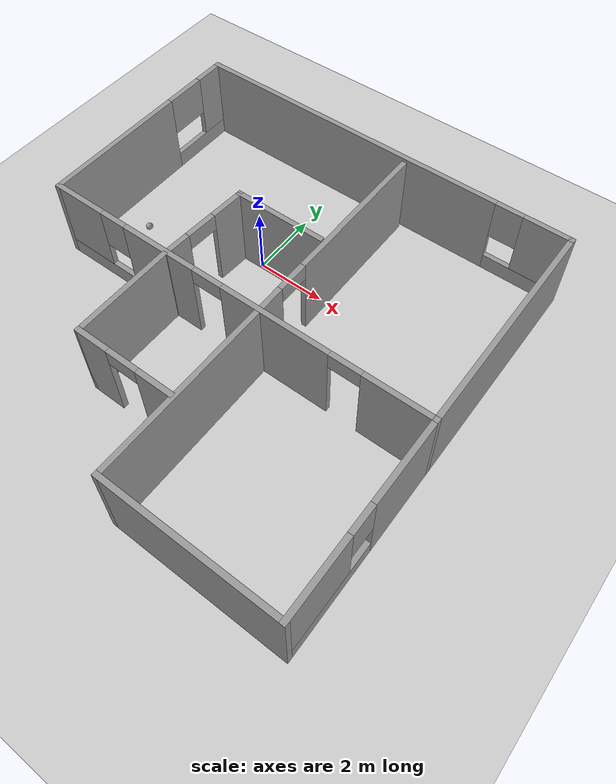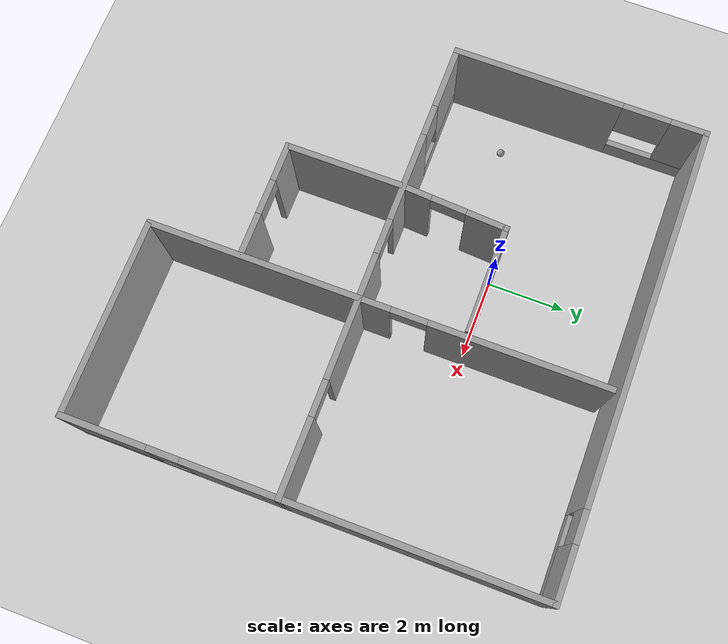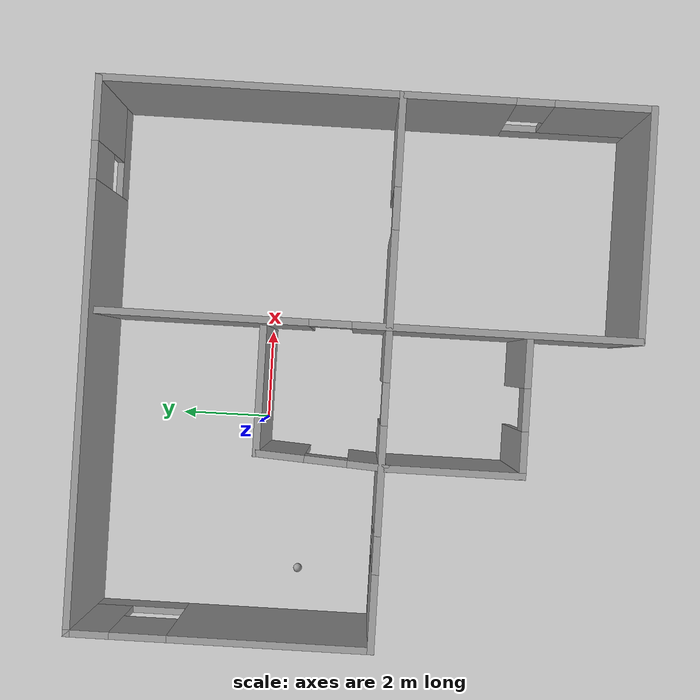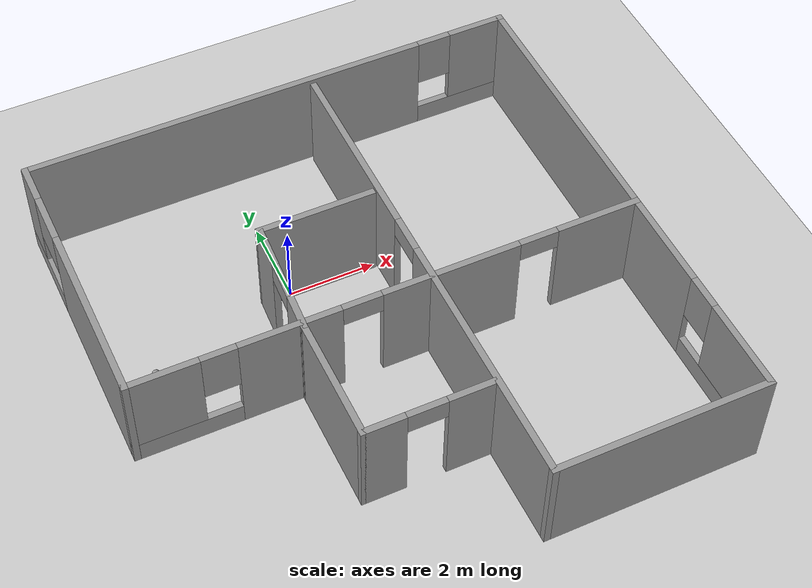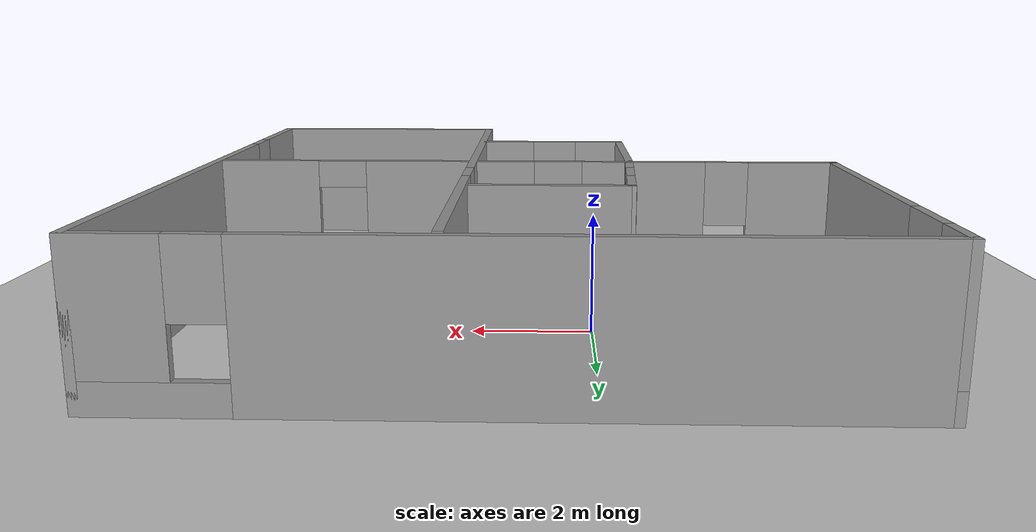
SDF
<sdf version="1.6">
 <world name="default">
  <light name="sun" type="directional">
   <pose>0 0 10 0 -0 0</pose>
   <diffuse>0.8 0.8 0.8 1</diffuse>
   <specular>0.2 0.2 0.2 1</specular>
   <attenuation>
    <range>1000</range>
    <constant>0.9</constant>
    <linear>0.01</linear>
    <quadratic>0.001</quadratic>
   </attenuation>
   <direction>-0.5 0.1 -0.9</direction>
  </light>
  <model name="ground_plane">
   <static>1</static>
   <link name="link">
    <collision name="collision">
     <geometry><plane><normal>0 0 1</normal><size>100 100</size></plane></geometry>
     <surface><friction><ode><mu>100</mu><mu2>50</mu2></ode></friction></surface>
    </collision>
    <visual name="visual">
     <cast_shadows>0</cast_shadows>
     <geometry><plane><normal>0 0 1</normal><size>100 100</size></plane></geometry>
     <material>
      <script><uri>file://media/materials/scripts/gazebo.material</uri><name>Gazebo/Grey</name></script>
     </material>
    </visual>
   </link>
  </model>
  <gravity>0 0 -9.8</gravity>
  <magnetic_field>6e-06 2.3e-05 -4.2e-05</magnetic_field>
  <atmosphere type="adiabatic"/>
  <physics name="default_physics" default="0" type="ode">
   <max_step_size>0.001</max_step_size>
   <real_time_factor>1</real_time_factor>
   <real_time_update_rate>1000</real_time_update_rate>
  </physics>
  <scene><ambient>0.4 0.4 0.4 1</ambient><background>0.7 0.7 0.7 1</background><shadows>1</shadows></scene>
  <audio><device>default</device></audio>
  <spherical_coordinates>
   <surface_model>EARTH_WGS84</surface_model>
   <latitude_deg>0</latitude_deg>
   <longitude_deg>0</longitude_deg>
   <elevation>0</elevation>
   <heading_deg>0</heading_deg>
  </spherical_coordinates>
  <model name="floor_plan">
   <pose>1.21294 -2.08877 0 0 -0 0</pose>
   <link name="Wall_0">
    <pose>-0 -0.55 0 0 -0 3.14159</pose>
    <visual name="Wall_0_Visual_0">
     <pose>-4.87792 0 1.25 0 -0 0</pose>
     <geometry><box><size>1.99416 0.15 2.5</size></box></geometry>
     <material>
      <script><uri>file://media/materials/scripts/gazebo.material</uri><name>Gazebo/Grey</name></script>
      <ambient>1 1 1 1</ambient>
     </material>
     <meta><layer>0</layer></meta>
    </visual>
    <collision name="Wall_0_Collision_0">
     <geometry><box><size>1.99416 0.15 2.5</size></box></geometry>
     <pose>-4.87792 0 1.25 0 -0 0</pose>
    </collision>
    <visual name="Wall_0_Visual_1">
     <pose>-1.3881 0 1.25 0 -0 0</pose>
     <geometry><box><size>3.18548 0.15 2.5</size></box></geometry>
     <material>
      <script><uri>file://media/materials/scripts/gazebo.material</uri><name>Gazebo/Grey</name></script>
      <ambient>1 1 1 1</ambient>
     </material>
     <meta><layer>0</layer></meta>
    </visual>
    <collision name="Wall_0_Collision_1">
     <geometry><box><size>3.18548 0.15 2.5</size></box></geometry>
     <pose>-1.3881 0 1.25 0 -0 0</pose>
    </collision>
    <visual name="Wall_0_Visual_2">
     <pose>2.25796 0 1.25 0 -0 0</pose>
     <geometry><box><size>2.30665 0.15 2.5</size></box></geometry>
     <material>
      <script><uri>file://media/materials/scripts/gazebo.material</uri><name>Gazebo/Grey</name></script>
      <ambient>1 1 1 1</ambient>
     </material>
     <meta><layer>0</layer></meta>
    </visual>
    <collision name="Wall_0_Collision_2">
     <geometry><box><size>2.30665 0.15 2.5</size></box></geometry>
     <pose>2.25796 0 1.25 0 -0 0</pose>
    </collision>
    <visual name="Wall_0_Visual_3">
     <pose>4.64314 0 0.25 0 -0 0</pose>
     <geometry><box><size>2.46372 0.15 0.5</size></box></geometry>
     <material>
      <script><uri>file://media/materials/scripts/gazebo.material</uri><name>Gazebo/Grey</name></script>
      <ambient>1 1 1 1</ambient>
     </material>
     <meta><layer>0</layer></meta>
    </visual>
    <collision name="Wall_0_Collision_3">
     <geometry><box><size>2.46372 0.15 0.5</size></box></geometry>
     <pose>4.64314 0 0.25 0 -0 0</pose>
    </collision>
    <visual name="Wall_0_Visual_4">
     <pose>5.04314 0 1.5 0 -0 0</pose>
     <geometry><box><size>1.66372 0.15 2</size></box></geometry>
     <material>
      <script><uri>file://media/materials/scripts/gazebo.material</uri><name>Gazebo/Grey</name></script>
      <ambient>1 1 1 1</ambient>
     </material>
     <meta><layer>0</layer></meta>
    </visual>
    <collision name="Wall_0_Collision_4">
     <geometry><box><size>1.66372 0.15 2</size></box></geometry>
     <pose>5.04314 0 1.5 0 -0 0</pose>
    </collision>
    <visual name="Wall_0_Visual_5">
     <pose>3.81128 0 1.9 0 -0 0</pose>
     <geometry><box><size>0.8 0.15 1.2</size></box></geometry>
     <material>
      <script><uri>file://media/materials/scripts/gazebo.material</uri><name>Gazebo/Grey</name></script>
      <ambient>1 1 1 1</ambient>
     </material>
     <meta><layer>0</layer></meta>
    </visual>
    <collision name="Wall_0_Collision_5">
     <geometry><box><size>0.8 0.15 1.2</size></box></geometry>
     <pose>3.81128 0 1.9 0 -0 0</pose>
    </collision>
    <visual name="Wall_0_Visual_6">
     <pose>-3.43084 0 2.25 0 -0 0</pose>
     <geometry><box><size>0.9 0.15 0.5</size></box></geometry>
     <material>
      <script><uri>file://media/materials/scripts/gazebo.material</uri><name>Gazebo/Grey</name></script>
      <ambient>1 1 1 1</ambient>
     </material>
     <meta><layer>0</layer></meta>
    </visual>
    <collision name="Wall_0_Collision_6">
     <geometry><box><size>0.9 0.15 0.5</size></box></geometry>
     <pose>-3.43084 0 2.25 0 -0 0</pose>
    </collision>
    <visual name="Wall_0_Visual_7">
     <pose>0.654638 0 2.25 0 -0 0</pose>
     <geometry><box><size>0.9 0.15 0.5</size></box></geometry>
     <material>
      <script><uri>file://media/materials/scripts/gazebo.material</uri><name>Gazebo/Grey</name></script>
      <ambient>1 1 1 1</ambient>
     </material>
     <meta><layer>0</layer></meta>
    </visual>
    <collision name="Wall_0_Collision_7">
     <geometry><box><size>0.9 0.15 0.5</size></box></geometry>
     <pose>0.654638 0 2.25 0 -0 0</pose>
    </collision>
   </link>
   <link name="Wall_1">
    <pose>-5.8 2.625 0 0 -0 1.5708</pose>
    <visual name="Wall_1_Visual_0">
     <pose>-1.08259 0 1.25 0 -0 0</pose>
     <geometry><box><size>4.33481 0.15 2.5</size></box></geometry>
     <material>
      <script><uri>file://media/materials/scripts/gazebo.material</uri><name>Gazebo/Grey</name></script>
      <ambient>1 1 1 1</ambient>
     </material>
     <meta><layer>0</layer></meta>
    </visual>
    <collision name="Wall_1_Collision_0">
     <geometry><box><size>4.33481 0.15 2.5</size></box></geometry>
     <pose>-1.08259 0 1.25 0 -0 0</pose>
    </collision>
    <visual name="Wall_1_Visual_1">
     <pose>2.16741 0 0.25 0 -0 0</pose>
     <geometry><box><size>2.16519 0.15 0.5</size></box></geometry>
     <material>
      <script><uri>file://media/materials/scripts/gazebo.material</uri><name>Gazebo/Grey</name></script>
      <ambient>1 1 1 1</ambient>
     </material>
     <meta><layer>0</layer></meta>
    </visual>
    <collision name="Wall_1_Collision_1">
     <geometry><box><size>2.16519 0.15 0.5</size></box></geometry>
     <pose>2.16741 0 0.25 0 -0 0</pose>
    </collision>
    <visual name="Wall_1_Visual_2">
     <pose>2.76741 0 1.5 0 -0 0</pose>
     <geometry><box><size>0.965186 0.15 2</size></box></geometry>
     <material>
      <script><uri>file://media/materials/scripts/gazebo.material</uri><name>Gazebo/Grey</name></script>
      <ambient>1 1 1 1</ambient>
     </material>
     <meta><layer>0</layer></meta>
    </visual>
    <collision name="Wall_1_Collision_2">
     <geometry><box><size>0.965186 0.15 2</size></box></geometry>
     <pose>2.76741 0 1.5 0 -0 0</pose>
    </collision>
    <visual name="Wall_1_Visual_3">
     <pose>1.68481 0 1.9 0 -0 0</pose>
     <geometry><box><size>1.2 0.15 1.2</size></box></geometry>
     <material>
      <script><uri>file://media/materials/scripts/gazebo.material</uri><name>Gazebo/Grey</name></script>
      <ambient>1 1 1 1</ambient>
     </material>
     <meta><layer>0</layer></meta>
    </visual>
    <collision name="Wall_1_Collision_3">
     <geometry><box><size>1.2 0.15 1.2</size></box></geometry>
     <pose>1.68481 0 1.9 0 -0 0</pose>
    </collision>
   </link>
   <link name="Wall_10">
    <pose>-0.5672 -3.4906 0 0 -0 0</pose>
    <visual name="Wall_10_Visual_0">
     <pose>-0.994935 0 1.25 0 -0 0</pose>
     <geometry><box><size>1.01013 0.15 2.5</size></box></geometry>
     <material>
      <script><uri>file://media/materials/scripts/gazebo.material</uri><name>Gazebo/Grey</name></script>
      <ambient>1 1 1 1</ambient>
     </material>
     <meta><layer>0</layer></meta>
    </visual>
    <collision name="Wall_10_Collision_0">
     <geometry><box><size>1.01013 0.15 2.5</size></box></geometry>
     <pose>-0.994935 0 1.25 0 -0 0</pose>
    </collision>
    <visual name="Wall_10_Visual_1">
     <pose>0.955065 0 1.25 0 -0 0</pose>
     <geometry><box><size>1.08987 0.15 2.5</size></box></geometry>
     <material>
      <script><uri>file://media/materials/scripts/gazebo.material</uri><name>Gazebo/Grey</name></script>
      <ambient>1 1 1 1</ambient>
     </material>
     <meta><layer>0</layer></meta>
    </visual>
    <collision name="Wall_10_Collision_1">
     <geometry><box><size>1.08987 0.15 2.5</size></box></geometry>
     <pose>0.955065 0 1.25 0 -0 0</pose>
    </collision>
    <visual name="Wall_10_Visual_2">
     <pose>-0.03987 0 2.25 0 -0 0</pose>
     <geometry><box><size>0.9 0.15 0.5</size></box></geometry>
     <material>
      <script><uri>file://media/materials/scripts/gazebo.material</uri><name>Gazebo/Grey</name></script>
      <ambient>1 1 1 1</ambient>
     </material>
     <meta><layer>0</layer></meta>
    </visual>
    <collision name="Wall_10_Collision_2">
     <geometry><box><size>0.9 0.15 0.5</size></box></geometry>
     <pose>-0.03987 0 2.25 0 -0 0</pose>
    </collision>
   </link>
   <link name="Wall_13">
    <collision name="Wall_13_Collision">
     <geometry><box><size>2.75 0.15 2.5</size></box></geometry>
     <pose>0 0 1.25 0 -0 0</pose>
    </collision>
    <visual name="Wall_13_Visual">
     <pose>0 0 1.25 0 -0 0</pose>
     <geometry><box><size>2.75 0.15 2.5</size></box></geometry>
     <material>
      <script><uri>file://media/materials/scripts/gazebo.material</uri><name>Gazebo/Grey</name></script>
      <ambient>1 1 1 1</ambient>
     </material>
     <meta><layer>0</layer></meta>
    </visual>
    <pose>-0.531693 2.07366 0 0 -0 0</pose>
   </link>
   <link name="Wall_15">
    <pose>-1.91195 0.716534 0 0 -0 -1.62986</pose>
    <visual name="Wall_15_Visual_0">
     <pose>-0.89466 0 1.25 0 -0 0</pose>
     <geometry><box><size>1.07968 0.15 2.5</size></box></geometry>
     <material>
      <script><uri>file://media/materials/scripts/gazebo.material</uri><name>Gazebo/Grey</name></script>
      <ambient>1 1 1 1</ambient>
     </material>
     <meta><layer>0</layer></meta>
    </visual>
    <collision name="Wall_15_Collision_0">
     <geometry><box><size>1.07968 0.15 2.5</size></box></geometry>
     <pose>-0.89466 0 1.25 0 -0 0</pose>
    </collision>
    <visual name="Wall_15_Visual_1">
     <pose>0.989841 0 1.25 0 -0 0</pose>
     <geometry><box><size>0.88932 0.15 2.5</size></box></geometry>
     <material>
      <script><uri>file://media/materials/scripts/gazebo.material</uri><name>Gazebo/Grey</name></script>
      <ambient>1 1 1 1</ambient>
     </material>
     <meta><layer>0</layer></meta>
    </visual>
    <collision name="Wall_15_Collision_1">
     <geometry><box><size>0.88932 0.15 2.5</size></box></geometry>
     <pose>0.989841 0 1.25 0 -0 0</pose>
    </collision>
    <visual name="Wall_15_Visual_2">
     <pose>0.095181 0 2.25 0 -0 0</pose>
     <geometry><box><size>0.9 0.15 0.5</size></box></geometry>
     <material>
      <script><uri>file://media/materials/scripts/gazebo.material</uri><name>Gazebo/Grey</name></script>
      <ambient>1 1 1 1</ambient>
     </material>
     <meta><layer>0</layer></meta>
    </visual>
    <collision name="Wall_15_Collision_2">
     <geometry><box><size>0.9 0.15 0.5</size></box></geometry>
     <pose>0.095181 0 2.25 0 -0 0</pose>
    </collision>
   </link>
   <link name="Wall_2">
    <pose>-0 5.8 0 0 -0 0</pose>
    <visual name="Wall_2_Visual_0">
     <pose>-1.10232 0 1.25 0 -0 0</pose>
     <geometry><box><size>9.54536 0.15 2.5</size></box></geometry>
     <material>
      <script><uri>file://media/materials/scripts/gazebo.material</uri><name>Gazebo/Grey</name></script>
      <ambient>1 1 1 1</ambient>
     </material>
     <meta><layer>0</layer></meta>
    </visual>
    <collision name="Wall_2_Collision_0">
     <geometry><box><size>9.54536 0.15 2.5</size></box></geometry>
     <pose>-1.10232 0 1.25 0 -0 0</pose>
    </collision>
    <visual name="Wall_2_Visual_1">
     <pose>4.77268 0 0.25 0 -0 0</pose>
     <geometry><box><size>2.20464 0.15 0.5</size></box></geometry>
     <material>
      <script><uri>file://media/materials/scripts/gazebo.material</uri><name>Gazebo/Grey</name></script>
      <ambient>1 1 1 1</ambient>
     </material>
     <meta><layer>0</layer></meta>
    </visual>
    <collision name="Wall_2_Collision_1">
     <geometry><box><size>2.20464 0.15 0.5</size></box></geometry>
     <pose>4.77268 0 0.25 0 -0 0</pose>
    </collision>
    <visual name="Wall_2_Visual_2">
     <pose>5.17268 0 1.5 0 -0 0</pose>
     <geometry><box><size>1.40464 0.15 2</size></box></geometry>
     <material>
      <script><uri>file://media/materials/scripts/gazebo.material</uri><name>Gazebo/Grey</name></script>
      <ambient>1 1 1 1</ambient>
     </material>
     <meta><layer>0</layer></meta>
    </visual>
    <collision name="Wall_2_Collision_2">
     <geometry><box><size>1.40464 0.15 2</size></box></geometry>
     <pose>5.17268 0 1.5 0 -0 0</pose>
    </collision>
    <visual name="Wall_2_Visual_3">
     <pose>4.07036 0 1.9 0 -0 0</pose>
     <geometry><box><size>0.8 0.15 1.2</size></box></geometry>
     <material>
      <script><uri>file://media/materials/scripts/gazebo.material</uri><name>Gazebo/Grey</name></script>
      <ambient>1 1 1 1</ambient>
     </material>
     <meta><layer>0</layer></meta>
    </visual>
    <collision name="Wall_2_Collision_3">
     <geometry><box><size>0.8 0.15 1.2</size></box></geometry>
     <pose>4.07036 0 1.9 0 -0 0</pose>
    </collision>
   </link>
   <link name="Wall_3">
    <pose>5.8 -0 0 0 -0 -1.5708</pose>
    <visual name="Wall_3_Visual_0">
     <pose>-1.48064 0 1.25 0 -0 0</pose>
     <geometry><box><size>8.78872 0.15 2.5</size></box></geometry>
     <material>
      <script><uri>file://media/materials/scripts/gazebo.material</uri><name>Gazebo/Grey</name></script>
      <ambient>1 1 1 1</ambient>
     </material>
     <meta><layer>0</layer></meta>
    </visual>
    <collision name="Wall_3_Collision_0">
     <geometry><box><size>8.78872 0.15 2.5</size></box></geometry>
     <pose>-1.48064 0 1.25 0 -0 0</pose>
    </collision>
    <visual name="Wall_3_Visual_1">
     <pose>4.39436 0 0.25 0 -0 0</pose>
     <geometry><box><size>2.96128 0.15 0.5</size></box></geometry>
     <material>
      <script><uri>file://media/materials/scripts/gazebo.material</uri><name>Gazebo/Grey</name></script>
      <ambient>1 1 1 1</ambient>
     </material>
     <meta><layer>0</layer></meta>
    </visual>
    <collision name="Wall_3_Collision_1">
     <geometry><box><size>2.96128 0.15 0.5</size></box></geometry>
     <pose>4.39436 0 0.25 0 -0 0</pose>
    </collision>
    <visual name="Wall_3_Visual_2">
     <pose>4.79436 0 1.5 0 -0 0</pose>
     <geometry><box><size>2.16128 0.15 2</size></box></geometry>
     <material>
      <script><uri>file://media/materials/scripts/gazebo.material</uri><name>Gazebo/Grey</name></script>
      <ambient>1 1 1 1</ambient>
     </material>
     <meta><layer>0</layer></meta>
    </visual>
    <collision name="Wall_3_Collision_2">
     <geometry><box><size>2.16128 0.15 2</size></box></geometry>
     <pose>4.79436 0 1.5 0 -0 0</pose>
    </collision>
    <visual name="Wall_3_Visual_3">
     <pose>3.31372 0 1.9 0 -0 0</pose>
     <geometry><box><size>0.8 0.15 1.2</size></box></geometry>
     <material>
      <script><uri>file://media/materials/scripts/gazebo.material</uri><name>Gazebo/Grey</name></script>
      <ambient>1 1 1 1</ambient>
     </material>
     <meta><layer>0</layer></meta>
    </visual>
    <collision name="Wall_3_Collision_3">
     <geometry><box><size>0.8 0.15 1.2</size></box></geometry>
     <pose>3.31372 0 1.9 0 -0 0</pose>
    </collision>
   </link>
   <link name="Wall_4">
    <collision name="Wall_4_Collision">
     <geometry><box><size>5 0.15 2.5</size></box></geometry>
     <pose>0 0 1.25 0 -0 0</pose>
    </collision>
    <visual name="Wall_4_Visual">
     <pose>0 0 1.25 0 -0 0</pose>
     <geometry><box><size>5 0.15 2.5</size></box></geometry>
     <material>
      <script><uri>file://media/materials/scripts/gazebo.material</uri><name>Gazebo/Grey</name></script>
      <ambient>1 1 1 1</ambient>
     </material>
     <meta><layer>0</layer></meta>
    </visual>
    <pose>3.375 -5.8 0 0 -0 3.14159</pose>
   </link>
   <link name="Wall_5">
    <pose>0.95 -0.125 0 0 -0 1.5708</pose>
    <visual name="Wall_5_Visual_0">
     <pose>-2.6962 0 1.25 0 -0 0</pose>
     <geometry><box><size>6.1076 0.15 2.5</size></box></geometry>
     <material>
      <script><uri>file://media/materials/scripts/gazebo.material</uri><name>Gazebo/Grey</name></script>
      <ambient>1 1 1 1</ambient>
     </material>
     <meta><layer>0</layer></meta>
    </visual>
    <collision name="Wall_5_Collision_0">
     <geometry><box><size>6.1076 0.15 2.5</size></box></geometry>
     <pose>-2.6962 0 1.25 0 -0 0</pose>
    </collision>
    <visual name="Wall_5_Visual_1">
     <pose>3.5038 0 1.25 0 -0 0</pose>
     <geometry><box><size>4.4924 0.15 2.5</size></box></geometry>
     <material>
      <script><uri>file://media/materials/scripts/gazebo.material</uri><name>Gazebo/Grey</name></script>
      <ambient>1 1 1 1</ambient>
     </material>
     <meta><layer>0</layer></meta>
    </visual>
    <collision name="Wall_5_Collision_1">
     <geometry><box><size>4.4924 0.15 2.5</size></box></geometry>
     <pose>3.5038 0 1.25 0 -0 0</pose>
    </collision>
    <visual name="Wall_5_Visual_2">
     <pose>0.807599 0 2.25 0 -0 0</pose>
     <geometry><box><size>0.9 0.15 0.5</size></box></geometry>
     <material>
      <script><uri>file://media/materials/scripts/gazebo.material</uri><name>Gazebo/Grey</name></script>
      <ambient>1 1 1 1</ambient>
     </material>
     <meta><layer>0</layer></meta>
    </visual>
    <collision name="Wall_5_Collision_2">
     <geometry><box><size>0.9 0.15 0.5</size></box></geometry>
     <pose>0.807599 0 2.25 0 -0 0</pose>
    </collision>
   </link>
   <link name="Wall_8">
    <collision name="Wall_8_Collision">
     <geometry><box><size>3 0.15 2.5</size></box></geometry>
     <pose>0 0 1.25 0 -0 0</pose>
    </collision>
    <visual name="Wall_8_Visual">
     <pose>0 0 1.25 0 -0 0</pose>
     <geometry><box><size>3 0.15 2.5</size></box></geometry>
     <material>
      <script><uri>file://media/materials/scripts/gazebo.material</uri><name>Gazebo/Grey</name></script>
      <ambient>1 1 1 1</ambient>
     </material>
     <meta><layer>0</layer></meta>
    </visual>
    <pose>-1.9922 -2.0656 0 0 -0 1.5708</pose>
   </link>
   <static>1</static>
  </model>
  <model name="my_ball">
   <link name="link_0">
    <inertial>
     <mass>1</mass>
     <inertia><ixx>0.1</ixx><ixy>0</ixy><ixz>0</ixz><iyy>0.1</iyy><iyz>0</iyz><izz>0.1</izz></inertia>
    </inertial>
    <visual name="visual">
     <geometry><sphere><radius>0.1</radius></sphere></geometry>
     <material>
      <lighting>1</lighting>
      <script><uri>file://media/materials/scripts/gazebo.material</uri><name>Gazebo/Grey</name></script>
      <shader type="vertex"><normal_map>__default__</normal_map></shader>
      <ambient>1 1 1 1</ambient>
      <diffuse>1 1 1 1</diffuse>
      <specular>1 1 1 1</specular>
      <emissive>1 1 1 1</emissive>
     </material>
    </visual>
    <collision name="collision">
     <geometry><sphere><radius>0.1</radius></sphere></geometry>
     <surface>
      <friction>
       <ode><mu>1</mu><mu2>1</mu2><fdir1>0 0 0</fdir1><slip1>0</slip1><slip2>0</slip2></ode>
       <torsional>
        <coefficient>1</coefficient>
        <patch_radius>0</patch_radius>
        <surface_radius>0</surface_radius>
        <use_patch_radius>1</use_patch_radius>
        <ode><slip>0</slip></ode>
       </torsional>
      </friction>
      <bounce><restitution_coefficient>0</restitution_coefficient><threshold>1e+06</threshold></bounce>
      <contact>
       <collide_without_contact>0</collide_without_contact>
       <collide_without_contact_bitmask>1</collide_without_contact_bitmask>
       <collide_bitmask>1</collide_bitmask>
       <ode>
        <soft_cfm>0</soft_cfm>
        <soft_erp>0.2</soft_erp>
        <kp>1e+13</kp>
        <kd>1</kd>
        <max_vel>0.01</max_vel>
        <min_depth>0</min_depth>
       </ode>
       <bullet>
        <split_impulse>1</split_impulse>
        <split_impulse_penetration_threshold>-0.01</split_impulse_penetration_threshold>
        <soft_cfm>0</soft_cfm>
        <soft_erp>0.2</soft_erp>
        <kp>1e+13</kp>
        <kd>1</kd>
       </bullet>
      </contact>
     </surface>
    </collision>
   </link>
   <static>0</static>
   <pose>-3.50041 -0.882983 0.1 0 -0 0</pose>
  </model>
 </world>
</sdf>
